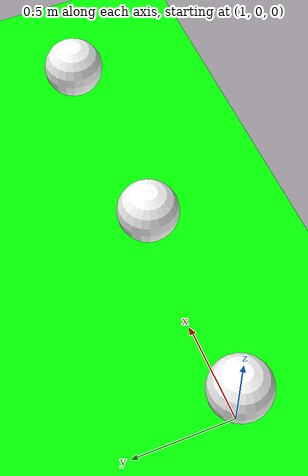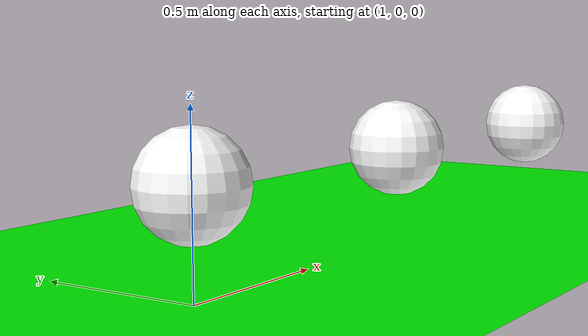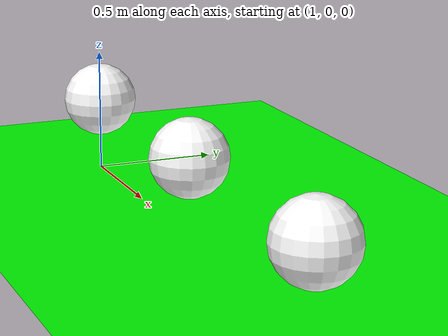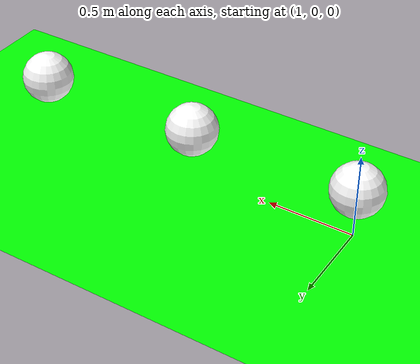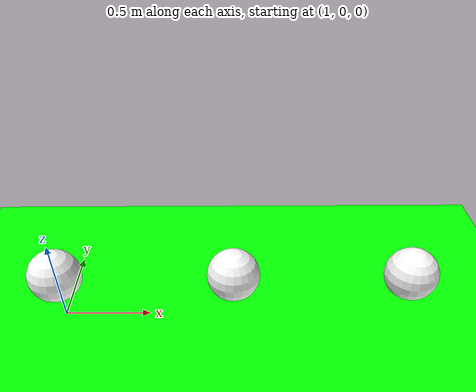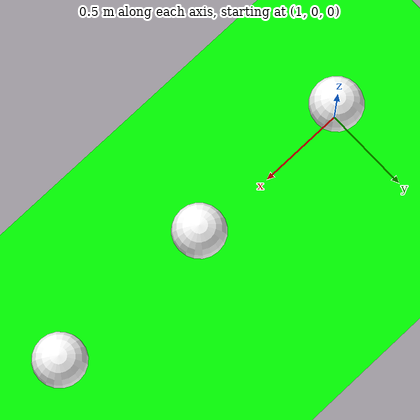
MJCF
<?xml version="1.0" ?>
<mujoco>
    <worldbody>
        <body name="sphero1" pos="3 0 0.3">
            <joint type="free" stiffness="0" damping="0" frictionloss="0.1" armature="0"/>
            <geom name="sphero1" mass="1.0" friction="1 1 1"  rgba="1 1 1 1" size="0.15" type="sphere"/>
        </body>
        <body name="sphero2" pos="1 0 0.3">
            <joint type="free" stiffness="0" damping="0" frictionloss="0.1" armature="0"/>
            <geom name="sphero2" mass="1.0" friction="1 1 1"  rgba="1 1 1 1" size="0.15" type="sphere"/>
        </body>
        <body name="sphero3" pos="2 0 0.3">
            <joint type="free" stiffness="0" damping="0" frictionloss="0.1" armature="0"/>
            <geom name="sphero3" mass="1.0" friction="1 1 1"  rgba="1 1 1 1" size="0.15" type="sphere"/>
        </body>
        <body name="sphero4" pos="3 0 0.3">
            <joint type="free" stiffness="0" damping="0" frictionloss="0.1" armature="0"/>
            <geom name="sphero4" mass="1.0" friction="1 1 1"  rgba="1 1 1 1" size="0.15" type="sphere"/>
        </body>

        <body name="floor" pos="0 0 0.025">
            <geom condim="3" size="25 10 0.02" rgba="0 1 0 1" type="plane"/>
        </body>

    </worldbody>
</mujoco>
